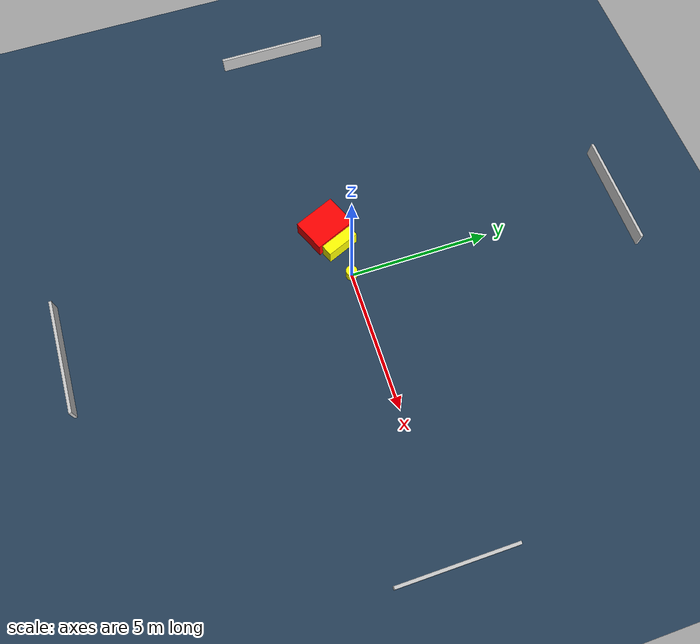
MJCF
<?xml version="1.0" ?>
<mujoco model="generated_environment">
  <option timestep="0.01" integrator="RK4" cone="elliptic"/>
  <default>
    <geom density="1"/>
  </default>
  <asset>
    <texture builtin="gradient" height="3072" name="skybox" rgb1="0.3 0.5 0.7" rgb2="0 0 0" type="skybox" width="512"/>
    <texture builtin="checker" height="300" name="groundplane" rgb1="0.2 0.3 0.4" rgb2="0.1 0.2 0.3" type="2d" width="300"/>
    <material name="groundplane" reflectance="0.2" texrepeat="5 5" texture="groundplane"/>
  </asset>
  <worldbody>
    <light dir="0 0 -1" directional="true" pos="0 0 1.5"/>
    <geom condim="3" friction="0.5 0.005 0.001" material="groundplane" name="floor" pos="0 0 0" size="0 0 0.05" type="plane"/>
    <body name="walls">
      <geom name="wall_1" condim="4" pos="-10.0 0.0 0.3" rgba="0.800000011920929 0.800000011920929 0.800000011920929 1.0" size="0.05 2.0 0.3" type="box"/>
      <geom name="wall_2" condim="4" pos="10.0 0.0 0.3" rgba="0.800000011920929 0.800000011920929 0.800000011920929 1.0" size="0.05 2.0 0.3" type="box"/>
      <geom name="wall_3" condim="4" pos="0.0 -10.0 0.3" rgba="0.800000011920929 0.800000011920929 0.800000011920929 1.0" size="2.0 0.05 0.3" type="box"/>
      <geom name="wall_4" condim="4" pos="0.0 10.0 0.3" rgba="0.800000011920929 0.800000011920929 0.800000011920929 1.0" size="2.0 0.05 0.3" type="box"/>
    </body>
    <body name="robot">
      <joint name="joint_x" type="slide" pos="0 0 0" axis="1 0 0"/>
      <joint name="joint_y" type="slide" pos="0 0 0" axis="0 1 0"/>
      <geom name="robot" type="cylinder" pos="0.0 0.0 0.2" size="0.2 0.2 0.0" mass="5.0" friction="1.0 0.005 0.0001" condim="4" rgba="1.0 1.0 0.0 1.0"/>
    </body>
    <body name="obstacle_1_movable">
      <geom name="obstacle_1_movable" condim="4" pos="-1.144172559319962 -0.06549559547086327 0.3" euler="0 0 202.643662799472" friction="0.0 0.005 0.001" rgba="1.0 1.0 0.0 1.0" size="0.20645366069001142 0.6032666599136578 0.3" type="box" mass="0.1"/>
      <joint type="free"/>
    </body>
    <body name="obstacle_2_static">
      <geom name="obstacle_2_static" condim="4" pos="-1.9548214543761069 -0.34635006803032137 0.3" euler="0 0 203.2958216115051" friction="0.0 0.005 0.001" rgba="1.0 0.0 0.0 1.0" size="0.6064685419556319 0.7720428564462976 0.3" type="box"/>
    </body>
  </worldbody>
  <actuator>
    <motor name="actuator_x" joint="joint_x" gear="1" ctrlrange="-1 1"/>
    <motor name="actuator_y" joint="joint_y" gear="1" ctrlrange="-1 1"/>
  </actuator>
</mujoco>
